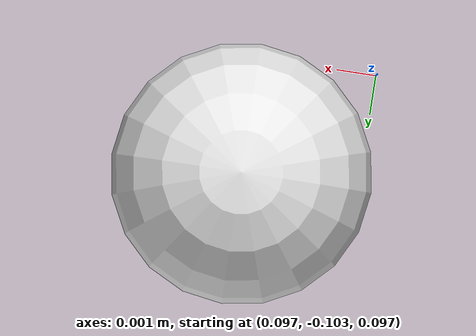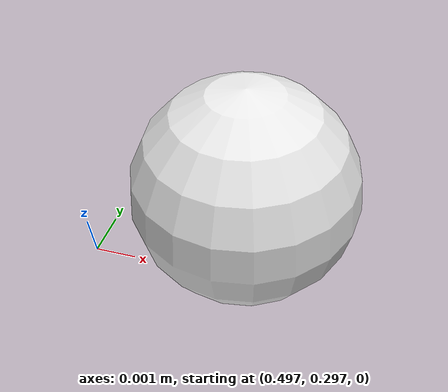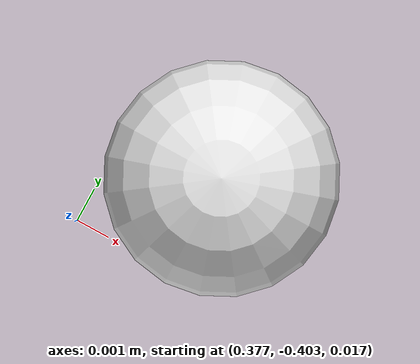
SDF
<sdf version="1.9">
  <world name="test_nexus_calibration">

    <model name="mocap">
        <pose>0 0 0 0 0 0</pose>
        <static>true</static>
        <link name="motion_capture_origin"/>
        <plugin filename="nexus_gazebo" name="nexus_gazebo::MotionCaptureSystem">
          <port>3883</port>
          <update_frequency>50.0</update_frequency>
          <stream_rigid_bodies>true</stream_rigid_bodies>
        </plugin>
    </model>

    <model name="mocap_rotated">
        <pose>0 0 0 0 0 1.5707</pose>
        <static>true</static>
        <link name="motion_capture_origin"/>
        <plugin filename="nexus_gazebo" name="nexus_gazebo::MotionCaptureSystem">
          <port>3884</port>
          <update_frequency>50.0</update_frequency>
          <stream_rigid_bodies>true</stream_rigid_bodies>
        </plugin>
    </model>

    <include>
      <uri>model://motion_capture_rigid_body</uri>
      <name>table_calibration_link</name>
      <pose>0.5 0.3 0 0 0 0</pose>
      <static>true</static>
    </include>

    <include>
      <uri>model://motion_capture_rigid_body</uri>
      <name>robot_calibration_link</name>
      <pose>0.1 -0.1 0.1 0 0 0</pose>
      <static>true</static>
    </include>

    <include>
      <uri>model://motion_capture_rigid_body</uri>
      <name>dispenser_calibration_link</name>
      <pose>0.38 -0.4 0.02 0 0 0</pose>
      <static>true</static>
    </include>

    <include>
      <uri>model://motion_capture_rigid_body</uri>
      <name>pallet_calibration_link</name>
      <pose>0.25 0.25 0.1 0 0 0</pose>
      <static>true</static>
    </include>
  </world>
</sdf>

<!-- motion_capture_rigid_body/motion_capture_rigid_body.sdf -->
<sdf version="1.9">
    <model name="motion_capture_rigid_body">
        <link name="motion_capture_rigid_body">
            <visual name="visual0">
              <geometry>
                <sphere>
                  <!-- 1/4" marker bead -->
                  <radius>0.0032</radius>
                </sphere>
              </geometry>
              <material>
                <diffuse>0.9 0.9 0.9 1.0</diffuse>
              </material>
            </visual>
            <collision name="collision0">
              <geometry>
                <sphere>
                  <!-- 1/4" marker bead -->
                  <radius>0.0032</radius>
                </sphere>
              </geometry>
            </collision>
        </link>
        <plugin filename="nexus_gazebo" name="nexus_gazebo::MotionCaptureRigidBody"/>
    </model>
</sdf>
